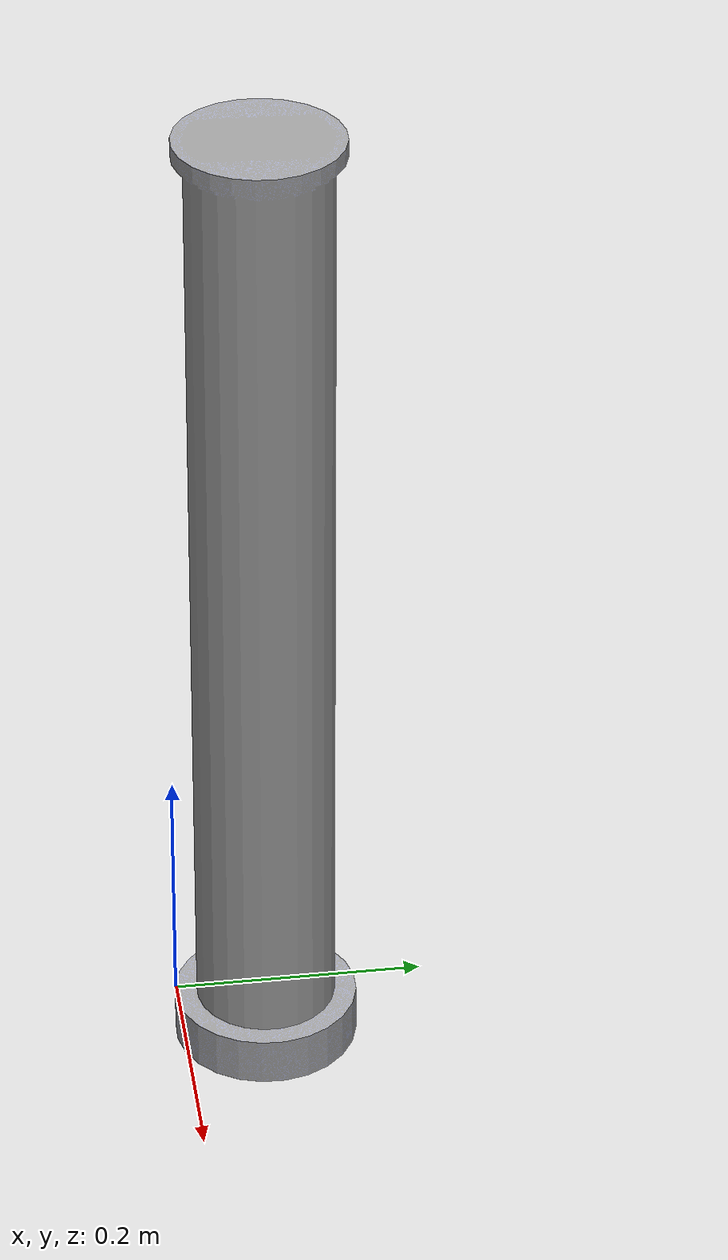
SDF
<?xml version="1.0" ?>
<sdf version="1.6">
  <model name="pillar">
    <static>true</static>
    <link name="link">
      <collision name="collision">
        <geometry>
          <mesh>
            <scale>0.3 0.3 0.16</scale>
            <uri>model://pillar/meshes/pillar.dae</uri>
          </mesh>
        </geometry>
      </collision>
      <visual name="visual">
        <geometry>
          <mesh>
            <scale>0.3 0.3 0.16</scale>
            <uri>model://pillar/meshes/pillar.dae</uri>
          </mesh>
        </geometry>
      </visual>
    </link>
  </model>
</sdf>
